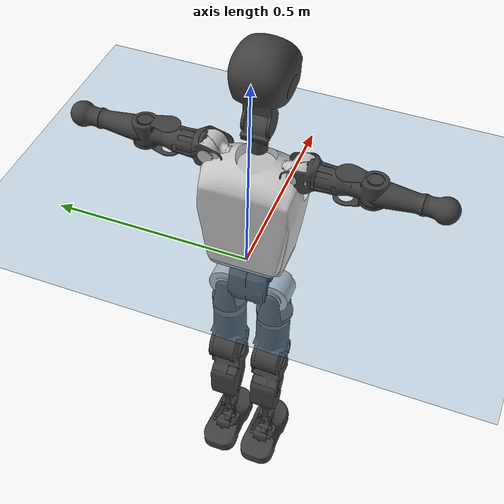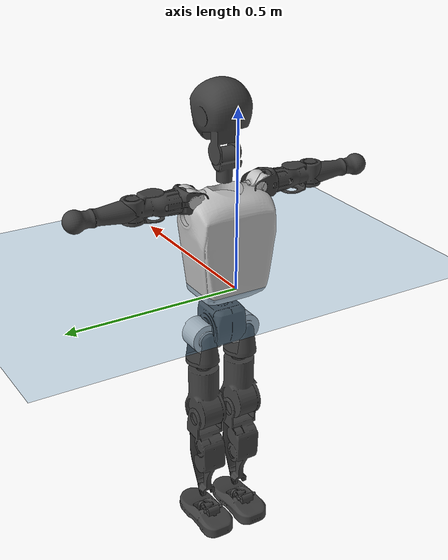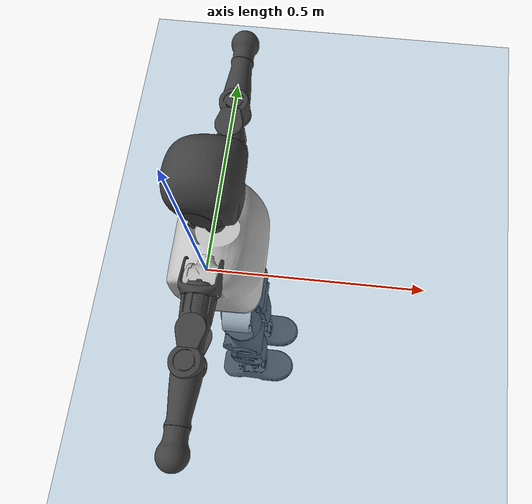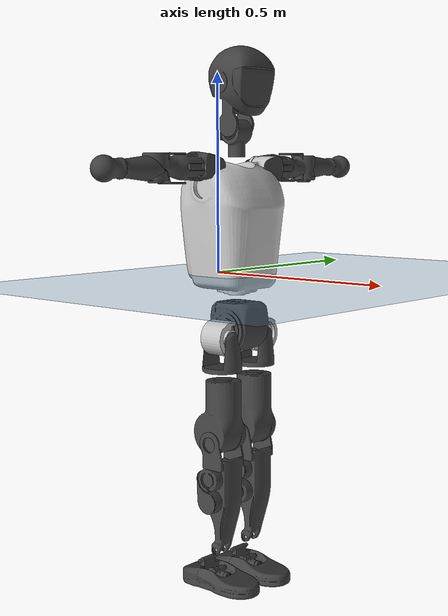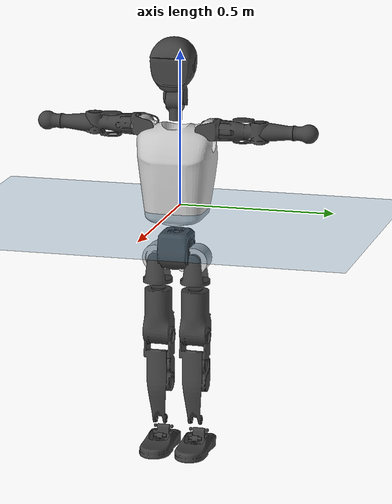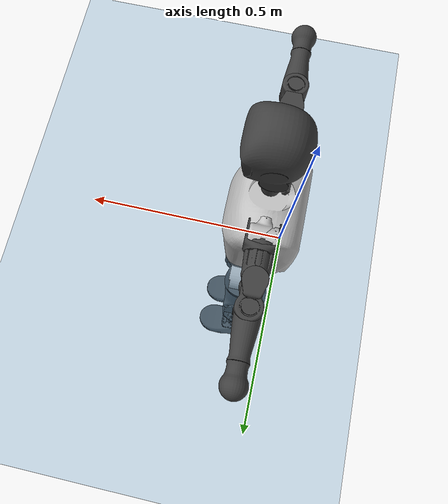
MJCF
<mujoco model="T1">
  <compiler angle="radian" assetdir="assets" balanceinertia="true" inertiafromgeom="false"/>

  <option timestep="0.005" density="1.2" viscosity="2e-05"/>

  <size nkey="1"/>

  <visual>
    <quality shadowsize="8192"/>
    <map shadowclip="0.5"/>
  </visual>

  <default>
    <default class="/">
      <joint armature="0.01" damping="0.01" frictionloss="0.1"/>
      <geom contype="0" conaffinity="0" group="1" solref="-1000 -80"/>
      <site size="0.01 0.005 0.005" group="5"/>
      <general forcelimited="true" biastype="affine" gainprm="25" biasprm="0 -25 -0.6"/>
      <default class="t1">
        <geom rgba="0.25 0.25 0.25 1"/>
        <default class="visual">
          <geom type="mesh" group="2"/>
        </default>
        <default class="collision">
          <geom group="3"/>
        </default>
        <default class="foot">
          <geom size="0.1115 0.05 0.015" type="box" condim="6" group="4" priority="1" solimp="0.015 1 0.015"/>
        </default>
        <default class="reward_collision_sphere">
          <geom group="5" rgba="1 0 0 1"/>
        </default>
      </default>
    </default>
  </default>

  <asset>
    <texture type="skybox" colorspace="auto" name="//unnamed_texture_0" builtin="gradient" rgb1="0.95 0.95 0.95" rgb2="0.95 0.95 0.95" width="100" height="600"/>
    <texture type="2d" colorspace="auto" name="texplane" builtin="checker" rgb1="0.345 0.575 0.748" rgb2="0.345 0.575 0.748" markrgb="1 1 1" width="512" height="512"/>
    <material name="MatPlane" class="/" texture="texplane" texuniform="true" texrepeat="2 2" specular="0.9"/>
    <mesh name="Trunk" class="/" file="Trunk.stl"/>
    <mesh name="H1" class="/" file="H1.stl"/>
    <mesh name="H2" class="/" file="H2.stl"/>
    <mesh name="AL1" class="/" file="AL1.stl"/>
    <mesh name="AL2" class="/" file="AL2.stl"/>
    <mesh name="AL3" class="/" file="AL3.stl"/>
    <mesh name="left_hand_link" class="/" file="left_hand_link.stl"/>
    <mesh name="AR1" class="/" file="AR1.stl"/>
    <mesh name="AR2" class="/" file="AR2.stl"/>
    <mesh name="AR3" class="/" file="AR3.stl"/>
    <mesh name="right_hand_link" class="/" file="right_hand_link.stl"/>
    <mesh name="Waist" class="/" file="Waist.stl"/>
    <mesh name="Hip_Pitch_Left" class="/" file="Hip_Pitch_Left.stl"/>
    <mesh name="Hip_Roll_Left" class="/" file="Hip_Roll_Left.stl"/>
    <mesh name="Hip_Yaw_Left" class="/" file="Hip_Yaw_Left.stl"/>
    <mesh name="Shank_Left" class="/" file="Shank_Left.stl"/>
    <mesh name="Ankle_Cross_Left" class="/" file="Ankle_Cross_Left.stl"/>
    <mesh name="left_foot_link" class="/" file="left_foot_link.stl"/>
    <mesh name="Hip_Pitch_Right" class="/" file="Hip_Pitch_Right.stl"/>
    <mesh name="Hip_Roll_Right" class="/" file="Hip_Roll_Right.stl"/>
    <mesh name="Hip_Yaw_Right" class="/" file="Hip_Yaw_Right.stl"/>
    <mesh name="Shank_Right" class="/" file="Shank_Right.stl"/>
    <mesh name="Ankle_Cross_Right" class="/" file="Ankle_Cross_Right.stl"/>
    <mesh name="right_foot_link" class="/" file="right_foot_link.stl"/>
  </asset>

  <worldbody>
    <geom name="floor" class="/" size="100 100 0.125" type="plane" group="0" material="MatPlane"/>
    <light name="toplight_shadow" class="/" pos="0 0 5" dir="0.0990148 0.0990148 -0.990148" type="directional" ambient="0.04 0.04 0.04" diffuse="0.55 0.55 0.55" specular="0.12 0.12 0.12"/>
    <light name="toplight_fill" class="/" pos="0 0 5" dir="0.0990148 0.0990148 -0.990148" type="directional" castshadow="false" ambient="0.04 0.04 0.04" diffuse="0.3 0.3 0.3" specular="0.08 0.08 0.08"/>
    <body name="trunk" childclass="t1" pos="-0.000426534 0.0023916 -0.000546652" quat="1 -0.000247955 -0.000159824 -3.90851e-06">
      <inertial pos="0.0529086 -0.00086942 0.127667" quat="0.999983 0.00154472 -0.00531685 -0.001955" mass="9.49998" diaginertia="0.0960289 0.00518947 0.133672"/>
      <joint name="//unnamed_joint_0" type="free" armature="0" damping="0" frictionloss="0"/>
      <geom name="//unnamed_geom_1" class="visual" rgba="0.76 0.76 0.76 1" mesh="Trunk"/>
      <geom name="//unnamed_geom_2" class="collision" size="0.0701628 0.0935504 0.140326" pos="0.0607776 0 0.14451" type="box"/>
      <geom name="//unnamed_geom_3" class="reward_collision_sphere" size="0.107583" pos="0.0607776 0 0.120425"/>
      <geom name="//unnamed_geom_4" class="reward_collision_sphere" size="0.0140326" pos="0.0607776 0.050091 0"/>
      <geom name="//unnamed_geom_5" class="reward_collision_sphere" size="0.0140326" pos="0.0607776 -0.050091 0"/>
      <geom name="//unnamed_geom_6" class="reward_collision_sphere" size="0.0140326" pos="0.0607776 0.0630557 0.216764"/>
      <geom name="//unnamed_geom_7" class="reward_collision_sphere" size="0.0140326" pos="0.0607776 -0.0630557 0.216764"/>
      <site name="imu" pos="-0.000839872 -0.00939477 -0.0109147" size="0.00935504"/>
      <camera name="track" pos="0 -1.17861 0" quat="0.707107 0.707107 0 0" mode="trackcom"/>
      <camera name="ego_camera" pos="0.123581 0 0.505784" quat="-0.5 -0.5 0.5 0.5"/>
      <body name="H1" pos="0.06344 -0.00152797 0.290257" quat="1 0.000765886 -0.000251918 -0.000192257">
        <inertial pos="3.7216e-05 -0.00388029 0.0712304" quat="0.761268 -0.00376743 -0.00536112 0.648404" mass="0.36205" diaginertia="0.000245011 1.57208e-05 0.000355706"/>
        <joint name="AAHead_yaw" pos="0 0 0" axis="0.00419133 0.0118745 0.999921" range="-1.52608 1.50131" armature="0.00915262" damping="0.00494904" frictionloss="0.0904636"/>
        <geom name="//unnamed_geom_8" class="visual" mesh="H1"/>
        <body name="H2" pos="-0.000812846 0.000360381 0.079326" quat="0.999998 0.00191698 0.00105635 -0.000381411">
          <inertial pos="0.00537394 0.000769186 0.11825" quat="0.988303 0.109019 -0.0743242 -0.0764663" mass="0.517428" diaginertia="0.00215987 0.000131905 0.00452764"/>
          <joint name="Head_pitch" pos="0 0 0" axis="0.000765428 -0.999998 0.0019548" range="-1.17069 0.33674" armature="0.0092598" damping="0.0120091" frictionloss="0.0924745"/>
          <geom name="//unnamed_geom_9" class="visual" mesh="H2"/>
          <geom name="//unnamed_geom_10" class="collision" size="0.0748403" pos="0.0101296 0 0.132467"/>
          <geom name="//unnamed_geom_11" class="reward_collision_sphere" size="0.0841953" pos="0.0202592 0 0.120425"/>
        </body>
      </body>
      <body name="AL1" pos="0.0587883 0.0621227 0.26347" quat="1 7.53609e-05 0.000242257 0.000181765">
        <inertial pos="0.0016036 0.0252949 -0.000296266" quat="0.504196 0.488714 -0.501804 0.505112" mass="0.440975" diaginertia="0.00143078 9.19263e-05 0.000739901"/>
        <joint name="Left_Shoulder_Pitch" pos="0 0 0" axis="0.0065459 0.999977 -0.00195167" range="-3.36751 1.20536" armature="0.00927298" damping="0.000350541" frictionloss="0.0846502"/>
        <geom name="//unnamed_geom_12" class="visual" rgba="0.76 0.76 0.76 1" mesh="AL1"/>
        <body name="AL2" pos="0.000296093 0.0272055 0.000314374" quat="0.999999 0.00112744 0.00020522 -0.000358981">
          <inertial pos="-1.70327e-05 0.0236955 -0.000141197" quat="0.484577 0.508435 -0.491332 0.515046" mass="0.13458" diaginertia="0.000442078 2.48374e-05 0.000472757"/>
          <joint name="Left_Shoulder_Roll" pos="0 0 0" axis="-0.99999 0.00444424 -7.00136e-05" range="-1.58027 1.69104" armature="0.00957957" damping="0.00427282" frictionloss="0.0851633"/>
          <geom name="//unnamed_geom_13" class="visual" mesh="AL2"/>
          <body name="AL3" pos="-0.000268019 0.0335712 -0.00107871" quat="1 0.000509118 -0.000773421 0.000340824">
            <inertial pos="-0.00299999 0.05262 0.00141391" quat="0.700302 0.713585 -0.0189055 -0.00397927" mass="0.791365" diaginertia="0.0125987 0.000813641 0.0015047"/>
            <joint name="Left_Elbow_Pitch" pos="0 0 0" axis="0.00972318 -0.999903 -0.0100157" stiffness="0.00525291" range="-2.2854 2.19595" armature="0.00875363" damping="0.00952445" frictionloss="0.0762631"/>
            <geom name="//unnamed_geom_14" class="visual" mesh="AL3"/>
            <geom name="//unnamed_geom_15" class="collision" size="0.0280651 0.0701628" pos="0 0.0294653 0" quat="0.707105 0.707108 0 0" type="cylinder"/>
            <geom name="//unnamed_geom_16" class="reward_collision_sphere" size="0.0336781"/>
            <body name="left_hand_link" pos="-0.000689344 0.0888492 0.00200084" quat="0.999999 0.00149847 -0.000406753 0.000760944">
              <inertial pos="-0.00259093 0.0643785 0.00102189" quat="0.716516 0.697561 -0.00293777 -0.00223782" mass="0.260297" diaginertia="0.00828464 0.000567343 0.000550991"/>
              <joint name="Left_Elbow_Yaw" pos="0 0 0" axis="-0.00499527 0.0054164 0.999973" stiffness="0.0095852" range="-2.47357 -0.0715679" armature="0.00981995" damping="0.0155024" frictionloss="0.10047"/>
              <geom name="//unnamed_geom_17" class="visual" mesh="left_hand_link"/>
              <geom name="//unnamed_geom_18" class="collision" size="0.0280651 0.0818566" pos="0 0.0766097 0" quat="0.707105 0.707108 0 0" type="cylinder"/>
              <geom name="//unnamed_geom_19" class="reward_collision_sphere" size="0.0467752"/>
              <geom name="//unnamed_geom_20" class="reward_collision_sphere" size="0.0327426" pos="0 0.0648236 0"/>
              <geom name="//unnamed_geom_21" class="reward_collision_sphere" size="0.0327426" pos="0 0.126701 0"/>
            </body>
          </body>
        </body>
      </body>
      <body name="AR1" pos="0.0553289 -0.0633054 0.26608" quat="1 1.69504e-05 0.000441433 -7.61739e-06">
        <inertial pos="-0.00163672 -0.0248895 -0.000190669" quat="0.503565 0.485531 -0.507998 0.502613" mass="0.439746" diaginertia="0.00145696 8.98878e-05 0.000739679"/>
        <joint name="Right_Shoulder_Pitch" pos="0 0 0" axis="0.0102553 -0.999806 0.0168249" range="-1.23161 3.25425" armature="0.00828311" damping="0.015144" frictionloss="0.108269"/>
        <geom name="//unnamed_geom_22" class="visual" rgba="0.76 0.76 0.76 1" mesh="AR1"/>
        <body name="AR2" pos="-0.00414505 -0.0252473 0.00230336" quat="1 2.2886e-05 0.000204767 1.65935e-05">
          <inertial pos="0.00349285 -0.0231097 0.00273872" quat="0.504781 0.487119 -0.521648 0.485586" mass="0.121967" diaginertia="0.000417429 2.3258e-05 0.000428051"/>
          <joint name="Right_Shoulder_Roll" pos="0 0 0" axis="-0.999981 0.0037656 0.00491488" stiffness="0.004895" range="-1.75717 1.56452" armature="0.00829356" damping="0.00910327" frictionloss="0.0883178"/>
          <geom name="//unnamed_geom_23" class="visual" mesh="AR2"/>
          <body name="AR3" pos="0.00168255 -0.0333462 -0.00191369" quat="1 -0.000266309 -0.000546713 0.000294373">
            <inertial pos="0.000670911 -0.0510598 0.00061176" quat="0.707229 0.706916 0.00635929 -0.00749537" mass="0.777252" diaginertia="0.0128777 0.000859765 0.00149247"/>
            <joint name="Right_Elbow_Pitch" pos="0 0 0" axis="0.000140108 0.999992 0.00396511" stiffness="0.0246519" range="-2.25556 2.30072" armature="0.00889427" damping="0" frictionloss="0.096972"/>
            <geom name="//unnamed_geom_24" class="visual" mesh="AR3"/>
            <geom name="//unnamed_geom_25" class="collision" size="0.0280651 0.0701628" pos="0 -0.0294653 0" quat="0.707105 0.707108 0 0" type="cylinder"/>
            <geom name="//unnamed_geom_26" class="reward_collision_sphere" size="0.0336781"/>
            <body name="right_hand_link" pos="0.000475344 -0.0878549 -0.00378915" quat="1 0.000112353 1.94813e-05 1.45686e-05">
              <inertial pos="-0.00227316 -0.0652136 0.0042018" quat="0.705226 0.708979 2.37102e-05 0.00219665" mass="0.278381" diaginertia="0.00884392 0.000558428 0.000537234"/>
              <joint name="Right_Elbow_Yaw" pos="0 0 0" axis="-0.000125438 0.000359939 1" range="0.0457546 2.4041" armature="0.00839361" damping="0.00123682" frictionloss="0.0872964"/>
              <geom name="//unnamed_geom_27" class="visual" mesh="right_hand_link"/>
              <geom name="//unnamed_geom_28" class="collision" size="0.0280651 0.0818566" pos="0 -0.0766097 0" quat="0.707105 0.707108 0 0" type="cylinder"/>
              <geom name="//unnamed_geom_29" class="reward_collision_sphere" size="0.0467752"/>
              <geom name="//unnamed_geom_30" class="reward_collision_sphere" size="0.0327426" pos="0 -0.0648236 0"/>
              <geom name="//unnamed_geom_31" class="reward_collision_sphere" size="0.0327426" pos="0 -0.126701 0"/>
            </body>
          </body>
        </body>
      </body>
      <body name="Waist" pos="0.0683188 0.00164056 -0.13636" quat="1 -8.52628e-05 0.000146931 -7.70451e-05">
        <inertial pos="0.00461126 0.000474605 0.0112582" quat="0.983876 6.98956e-05 -0.178834 0.00273425" mass="2.21757" diaginertia="0.00590839 0.000396823 0.0123125"/>
        <joint name="Waist" pos="0 0 0" axis="0.00290468 -0.00172436 0.999994" range="-1.56115 1.57433" armature="0.0106296" damping="0" frictionloss="0.10743"/>
        <geom name="//unnamed_geom_32" class="visual" mesh="Waist"/>
        <body name="Hip_Pitch_Left" pos="0.00300174 0.0650404 -0.00119077" quat="1 0.000202795 0.000200033 -0.000380114">
          <inertial pos="0.00130997 -0.00747487 -0.0214379" quat="0.975077 0.221281 0.0130359 0.00946273" mass="0.837713" diaginertia="0.00182504 9.68301e-05 0.00303655"/>
          <joint name="Left_Hip_Pitch" pos="0 0 0" axis="-0.00547686 0.999859 0.0158714" stiffness="0.0158383" range="-1.84782 1.62122" armature="0.00813652" damping="0.0152802" frictionloss="0.104171"/>
          <geom name="//unnamed_geom_33" class="visual" rgba="0.76 0.76 0.76 1" mesh="Hip_Pitch_Left"/>
          <body name="Hip_Roll_Left" pos="-0.00223234 -0.00191106 -0.023381" quat="0.999998 -0.00210359 -0.000607272 -1.63138e-05">
            <inertial pos="0.00360512 0.000972005 -0.0621072" quat="0.704534 9.38906e-05 -0.0246874 0.709241" mass="0.327563" diaginertia="0.00194978 0.000114075 0.00130078"/>
            <joint name="Left_Hip_Roll" pos="0 0 0" axis="-0.999761 -0.0218566 0.000993805" range="-1.56208 0.150556" armature="0.00838552" damping="0.0208518" frictionloss="0.0881093"/>
            <geom name="//unnamed_geom_34" class="visual" mesh="Hip_Roll_Left"/>
            <geom name="//unnamed_geom_35" class="reward_collision_sphere" size="0.0514527"/>
            <body name="Hip_Yaw_Left" pos="-0.00483961 -0.00119339 -0.100459" quat="0.999999 -0.000831308 0.000308082 -0.001105">
              <inertial pos="-0.00464255 -0.00298481 -0.108946" quat="0.69598 -0.0238229 -0.0269764 0.717159" mass="1.70188" diaginertia="0.0265166 0.00173398 0.00630613"/>
              <joint name="Left_Hip_Yaw" pos="0 0 0" axis="0.00615122 0.00443561 -0.999971" range="-0.9581 1.06715" armature="0.0102153" damping="0" frictionloss="0.101634"/>
              <geom name="//unnamed_geom_36" class="visual" mesh="Hip_Yaw_Left"/>
              <geom name="//unnamed_geom_37" class="collision" size="0.0467752 0.0748403" type="cylinder"/>
              <body name="Shank_Left" pos="-0.0113745 -0.00136629 -0.15819" quat="1 0.000299261 9.34783e-05 -0.000257875">
                <inertial pos="-0.00730151 0.00197157 -0.148667" quat="0.996815 0.0031264 -0.0342715 0.0719453" mass="1.42906" diaginertia="0.0369845 0.00252193 0.00500647"/>
                <joint name="Left_Knee_Pitch" pos="0 0 0" axis="0.00334741 0.999994 -0.00122069" stiffness="0.00197831" range="0.0232906 2.38051" armature="0.00902679" damping="0.0115013" frictionloss="0.101307"/>
                <geom name="//unnamed_geom_38" class="visual" mesh="Shank_Left"/>
                <geom name="//unnamed_geom_39" class="collision" size="0.0467752 0.0701628" pos="0 0 -0.14451" type="cylinder"/>
                <geom name="//unnamed_geom_40" class="reward_collision_sphere" size="0.0608078"/>
                <body name="Ankle_Cross_Left" pos="0.0006485 0.000622244 -0.340497" quat="1 -0.000434803 -0.000295824 -0.000486142">
                  <inertial pos="-0.00390374 0.00254475 -0.0110392" quat="0.442993 0.552081 0.55162 0.441224" mass="0.0562887" diaginertia="3.06588e-05 1.72229e-06 2.7927e-05"/>
                  <joint name="Left_Ankle_Pitch" pos="0 0 0" axis="0.00892259 0.999952 0.00415493" range="-0.921964 0.399104" armature="0.00965034" damping="0.0153846" frictionloss="0.0939436"/>
                  <geom name="//unnamed_geom_41" class="visual" mesh="Ankle_Cross_Left"/>
                  <body name="left_foot_link" pos="0.000612577 0.00165223 -0.0153525" quat="0.999999 0.000107876 -0.000974727 0.000504643">
                    <inertial pos="0.00205867 -0.00091275 -0.0105636" quat="-0.00160571 0.618835 -0.000459584 0.785519" mass="0.59795" diaginertia="0.00280153 0.00017776 0.00584429"/>
                    <joint name="Left_Ankle_Roll" pos="0 0 0" axis="-0.999989 -0.00454702 0.000983451" stiffness="0.007331" range="-0.491815 0.380636" armature="0.00768237" damping="0.00971316" frictionloss="0.104773"/>
                    <geom name="//unnamed_geom_42" class="visual" mesh="left_foot_link"/>
                    <geom name="left_foot" class="foot" size="0.0947592 0.0521105 0.0128942" pos="0.0101296 0 -0.0180637"/>
                    <geom name="//unnamed_geom_44" class="reward_collision_sphere" size="0.0486462" pos="0.0101296 0 -0.0180637"/>
                    <geom name="//unnamed_geom_45" class="reward_collision_sphere" size="0.0280651" pos="0.0962311 -0.013554 -0.0180637"/>
                    <geom name="//unnamed_geom_46" class="reward_collision_sphere" size="0.0280651" pos="-0.0709072 -0.013554 -0.0180637"/>
                    <site name="left_foot" class="foot" pos="0.0101296 0 -0.0180637" size="0.00935504"/>
                  </body>
                </body>
              </body>
            </body>
          </body>
        </body>
        <body name="Hip_Pitch_Right" pos="-0.00143415 -0.0603708 0.000973691" quat="0.999999 0.00106699 0.000407152 0.000573318">
          <inertial pos="0.00249943 0.00639392 -0.0217508" quat="0.972995 -0.230546 0.0094133 -0.00635474" mass="0.795549" diaginertia="0.00190152 0.000102491 0.00310367"/>
          <joint name="Right_Hip_Pitch" pos="0 0 0" axis="-0.00590064 -0.999891 -0.0135264" range="-1.51928 1.77594" armature="0.00712809" damping="0.0140037" frictionloss="0.0858097"/>
          <geom name="//unnamed_geom_47" class="visual" rgba="0.76 0.76 0.76 1" mesh="Hip_Pitch_Right"/>
          <body name="Hip_Roll_Right" pos="0.00150873 -0.000791955 -0.0273843" quat="0.999999 -0.000989538 2.48938e-05 0.000630955">
            <inertial pos="0.00105772 0.00300105 -0.0643085" quat="0.713666 -0.0117635 -0.00778437 0.700344" mass="0.343207" diaginertia="0.0020139 0.000114199 0.00138531"/>
            <joint name="Right_Hip_Roll" pos="0 0 0" axis="-0.999805 -0.00185743 0.019665" range="-0.2272 1.57113" armature="0.00959392" damping="0.0200188" frictionloss="0.0966776"/>
            <geom name="//unnamed_geom_48" class="visual" mesh="Hip_Roll_Right"/>
            <geom name="//unnamed_geom_49" class="reward_collision_sphere" size="0.0514527"/>
            <body name="Hip_Yaw_Right" pos="-0.000893572 0.00149894 -0.100191" quat="1 -1.19692e-05 -0.000214821 7.86659e-05">
              <inertial pos="-0.00767694 0.00421362 -0.105576" quat="0.7079 -0.0262619 -0.0295225 0.705207" mass="1.90477" diaginertia="0.029362 0.00192244 0.00672179"/>
              <joint name="Right_Hip_Yaw" pos="0 0 0" axis="-0.00577955 0.00151428 -0.999982" range="-1.03003 0.977133" armature="0.0082697" damping="0.0200589" frictionloss="0.0927048"/>
              <geom name="//unnamed_geom_50" class="visual" mesh="Hip_Yaw_Right"/>
              <geom name="//unnamed_geom_51" class="collision" size="0.0467752 0.0748403" type="cylinder"/>
              <body name="Shank_Right" pos="-0.0120713 0.00165186 -0.160346" quat="1 -7.51687e-05 -0.000262821 -0.00024167">
                <inertial pos="-0.00539824 0.000460495 -0.149751" quat="0.999073 0.0110092 -0.0228804 -0.0347622" mass="1.48969" diaginertia="0.0402947 0.002442 0.00504541"/>
                <joint name="Right_Knee_Pitch" pos="0 0 0" axis="-0.017601 -0.999801 0.00935525" stiffness="0.0108113" range="-2.3088 0.0371254" armature="0.0094499" damping="0.0174172" frictionloss="0.0928196"/>
                <geom name="//unnamed_geom_52" class="visual" mesh="Shank_Right"/>
                <geom name="//unnamed_geom_53" class="collision" size="0.0467752 0.0701628" pos="0 0 -0.14451" type="cylinder"/>
                <geom name="//unnamed_geom_54" class="reward_collision_sphere" size="0.0608078"/>
                <body name="Ankle_Cross_Right" pos="-0.00282164 -0.000716397 -0.336277" quat="1 -0.000348694 0.000310849 -0.000300903">
                  <inertial pos="-0.00639042 -0.000525557 -0.0067169" quat="0.456271 0.544908 0.544397 0.44556" mass="0.0615845" diaginertia="3.33857e-05 1.85169e-06 3.06852e-05"/>
                  <joint name="Right_Ankle_Pitch" pos="0 0 0" axis="0.00706232 -0.999975 0.000542997" stiffness="0.00672257" range="-0.349602 0.914713" armature="0.00909802" damping="0.00752194" frictionloss="0.0980555"/>
                  <geom name="//unnamed_geom_55" class="visual" mesh="Ankle_Cross_Right"/>
                  <body name="right_foot_link" pos="-0.0012904 -0.000118458 -0.0137428" quat="0.999999 0.000746812 -0.000792192 4.49174e-05">
                    <inertial pos="0.0042424 8.78151e-05 -0.0115128" quat="3.29368e-07 0.620677 0.000134855 0.784067" mass="0.559799" diaginertia="0.00279628 0.000163556 0.00535771"/>
                    <joint name="Right_Ankle_Roll" pos="0 0 0" axis="-1 -0.000242276 4.98365e-05" range="-0.488315 0.460178" armature="0.0101619" damping="0" frictionloss="0.0931555"/>
                    <geom name="//unnamed_geom_56" class="visual" mesh="right_foot_link"/>
                    <geom name="right_foot" class="foot" size="0.099966 0.0466573 0.0145211" pos="0.0101296 0 -0.0180637"/>
                    <geom name="//unnamed_geom_58" class="reward_collision_sphere" size="0.0374202"/>
                    <geom name="//unnamed_geom_59" class="reward_collision_sphere" size="0.0280651" pos="0.0101296 0 -0.0180637"/>
                    <geom name="//unnamed_geom_60" class="reward_collision_sphere" size="0.0280651" pos="0.0962311 0.013554 -0.0180637"/>
                    <geom name="//unnamed_geom_61" class="reward_collision_sphere" size="0.0280651" pos="-0.0709072 0.013554 -0.0180637"/>
                    <site name="right_foot" class="foot" pos="0.0101296 0 -0.0180637" size="0.00935504"/>
                  </body>
                </body>
              </body>
            </body>
          </body>
        </body>
      </body>
    </body>
  </worldbody>

  <contact>
    <pair class="/" geom1="floor" geom2="left_foot" name="//unnamed_contact_0"/>
    <pair class="/" geom1="floor" geom2="right_foot" name="//unnamed_contact_1"/>
  </contact>

  <actuator>
    <general name="AAHead_yaw" class="/" joint="AAHead_yaw" forcerange="-6.59194 6.59194" gainprm="24.2998" biasprm="0 -24.2998 -0.541613"/>
    <general name="Head_pitch" class="/" joint="Head_pitch" forcerange="-6.49739 6.49739" gainprm="24.2998" biasprm="0 -24.2998 -0.541613"/>
    <general name="Left_Shoulder_Pitch" class="/" joint="Left_Shoulder_Pitch" forcerange="-15.3375 15.3375" gainprm="24.2998" biasprm="0 -24.2998 -0.541613"/>
    <general name="Left_Shoulder_Roll" class="/" joint="Left_Shoulder_Roll" forcerange="-17.7612 17.7612" gainprm="24.2998" biasprm="0 -24.2998 -0.541613"/>
    <general name="Left_Elbow_Pitch" class="/" joint="Left_Elbow_Pitch" forcerange="-15.2361 15.2361" gainprm="24.2998" biasprm="0 -24.2998 -0.541613"/>
    <general name="Left_Elbow_Yaw" class="/" joint="Left_Elbow_Yaw" forcerange="-16.6001 16.6001" gainprm="24.2998" biasprm="0 -24.2998 -0.541613"/>
    <general name="Right_Shoulder_Pitch" class="/" joint="Right_Shoulder_Pitch" forcerange="-19.0664 19.0664" gainprm="24.2998" biasprm="0 -24.2998 -0.541613"/>
    <general name="Right_Shoulder_Roll" class="/" joint="Right_Shoulder_Roll" forcerange="-17.0529 17.0529" gainprm="24.2998" biasprm="0 -24.2998 -0.541613"/>
    <general name="Right_Elbow_Pitch" class="/" joint="Right_Elbow_Pitch" forcerange="-15.0439 15.0439" gainprm="24.2998" biasprm="0 -24.2998 -0.541613"/>
    <general name="Right_Elbow_Yaw" class="/" joint="Right_Elbow_Yaw" forcerange="-18.2189 18.2189" gainprm="24.2998" biasprm="0 -24.2998 -0.541613"/>
    <general name="Waist" class="/" joint="Waist" forcerange="-25.8748 25.8748" gainprm="24.2998" biasprm="0 -24.2998 -0.541613"/>
    <general name="Left_Hip_Pitch" class="/" joint="Left_Hip_Pitch" forcerange="-38.3153 38.3153" gainprm="24.2998" biasprm="0 -24.2998 -0.541613"/>
    <general name="Left_Hip_Roll" class="/" joint="Left_Hip_Roll" forcerange="-25.7878 25.7878" gainprm="24.2998" biasprm="0 -24.2998 -0.541613"/>
    <general name="Left_Hip_Yaw" class="/" joint="Left_Hip_Yaw" forcerange="-32.3505 32.3505" gainprm="24.2998" biasprm="0 -24.2998 -0.541613"/>
    <general name="Left_Knee_Pitch" class="/" joint="Left_Knee_Pitch" forcerange="-54.6605 54.6605" gainprm="24.2998" biasprm="0 -24.2998 -0.541613"/>
    <general name="Left_Ankle_Pitch" class="/" joint="Left_Ankle_Pitch" forcerange="-22.2209 22.2209" gainprm="24.2998" biasprm="0 -24.2998 -0.541613"/>
    <general name="Left_Ankle_Roll" class="/" joint="Left_Ankle_Roll" forcerange="-13.601 13.601" gainprm="24.2998" biasprm="0 -24.2998 -0.541613"/>
    <general name="Right_Hip_Pitch" class="/" joint="Right_Hip_Pitch" forcerange="-42.6412 42.6412" gainprm="24.2998" biasprm="0 -24.2998 -0.541613"/>
    <general name="Right_Hip_Roll" class="/" joint="Right_Hip_Roll" forcerange="-26.8334 26.8334" gainprm="24.2998" biasprm="0 -24.2998 -0.541613"/>
    <general name="Right_Hip_Yaw" class="/" joint="Right_Hip_Yaw" forcerange="-26.8283 26.8283" gainprm="24.2998" biasprm="0 -24.2998 -0.541613"/>
    <general name="Right_Knee_Pitch" class="/" joint="Right_Knee_Pitch" forcerange="-52.8673 52.8673" gainprm="24.2998" biasprm="0 -24.2998 -0.541613"/>
    <general name="Right_Ankle_Pitch" class="/" joint="Right_Ankle_Pitch" forcerange="-19.3473 19.3473" gainprm="24.2998" biasprm="0 -24.2998 -0.541613"/>
    <general name="Right_Ankle_Roll" class="/" joint="Right_Ankle_Roll" forcerange="-15.5655 15.5655" gainprm="24.2998" biasprm="0 -24.2998 -0.541613"/>
  </actuator>

  <sensor>
    <gyro site="imu" name="imu_angular_velocity"/>
    <velocimeter site="imu" name="imu_linear_velocity"/>
    <framelinvel objtype="site" objname="left_foot" name="left_foot_global_linear_velocity"/>
    <framelinvel objtype="site" objname="right_foot" name="right_foot_global_linear_velocity"/>
  </sensor>

  <keyframe>
    <key name="home" qpos="0 0 0.6385 1 0 0 0 0 0 0 1.4 0 -0.4 0 -1.4 0 0.4 0 -0.4 0 0 0.8 -0.4 0 0.4 0 0 -0.8 0.4 0"/>
  </keyframe>
</mujoco>
